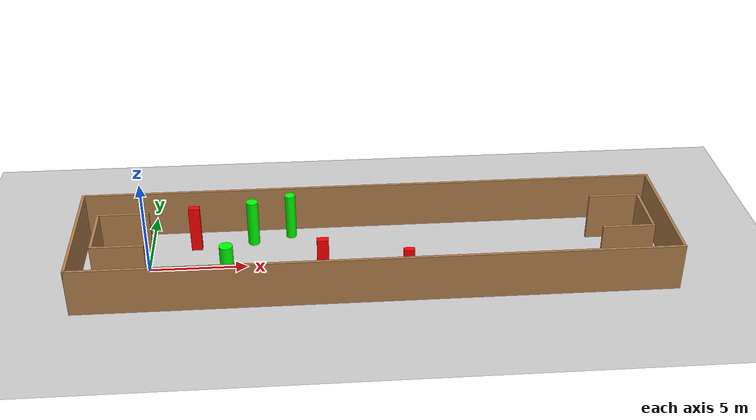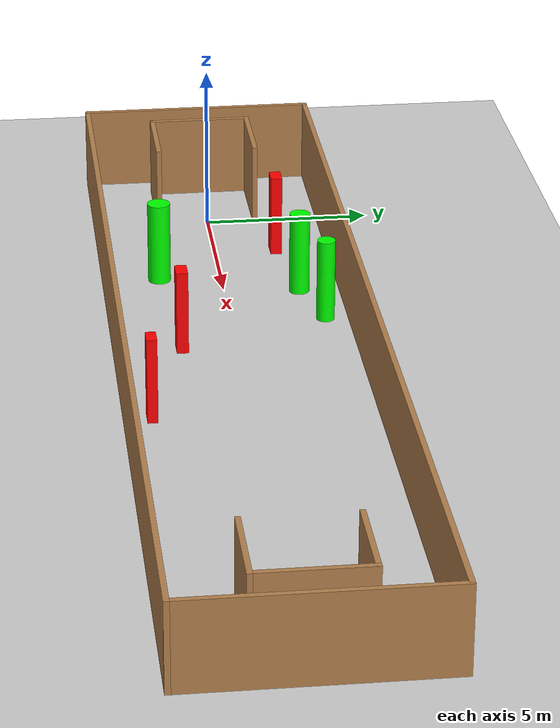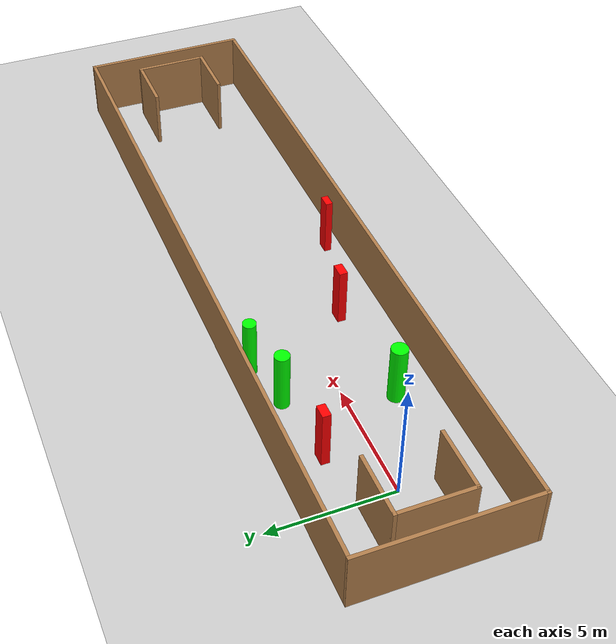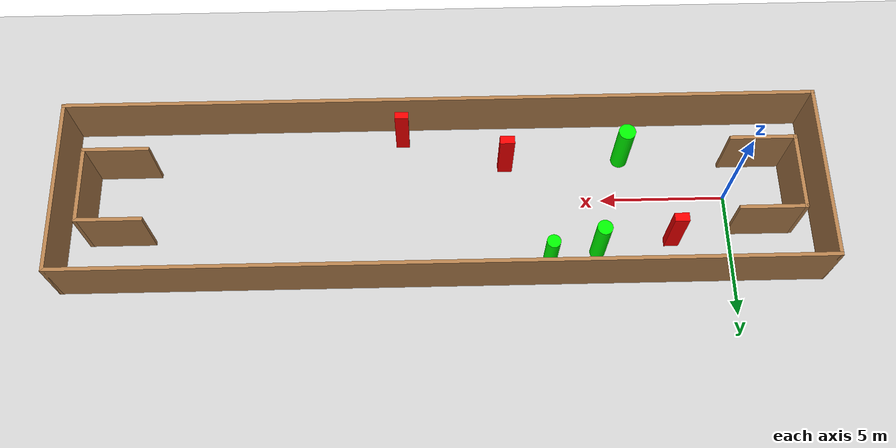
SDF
<sdf version="1.7">
 <world name="default">
  <light name="sun" type="directional">
   <pose>0 0 10 0 -0 0</pose>
   <diffuse>0.8 0.8 0.8 1</diffuse>
   <specular>0.2 0.2 0.2 1</specular>
   <attenuation>
    <range>1000</range>
    <constant>0.9</constant>
    <linear>0.01</linear>
    <quadratic>0.001</quadratic>
   </attenuation>
   <direction>-0.5 0.1 -0.9</direction>
   <spot><inner_angle>0</inner_angle><outer_angle>0</outer_angle><falloff>0</falloff></spot>
  </light>
  <model name="ground_plane">
   <static>1</static>
   <link name="link">
    <collision name="collision">
     <geometry><plane><normal>0 0 1</normal><size>100 100</size></plane></geometry>
     <surface>
      <contact><collide_bitmask>65535</collide_bitmask></contact>
      <friction><ode><mu>100</mu><mu2>50</mu2></ode></friction>
     </surface>
    </collision>
    <visual name="visual">
     <cast_shadows>0</cast_shadows>
     <geometry><plane><normal>0 0 1</normal><size>100 100</size></plane></geometry>
     <material>
      <script><uri>file://media/materials/scripts/gazebo.material</uri><name>Gazebo/Grey</name></script>
     </material>
    </visual>
   </link>
  </model>
  <gravity>0 0 -9.8</gravity>
  <magnetic_field>6e-06 2.3e-05 -4.2e-05</magnetic_field>
  <atmosphere type="adiabatic"/>
  <physics type="ode">
   <max_step_size>0.001</max_step_size>
   <real_time_factor>1</real_time_factor>
   <real_time_update_rate>1000</real_time_update_rate>
  </physics>
  <scene><ambient>0.4 0.4 0.4 1</ambient><background>0.7 0.7 0.7 1</background><shadows>1</shadows></scene>
  <spherical_coordinates>
   <surface_model>EARTH_WGS84</surface_model>
   <latitude_deg>0</latitude_deg>
   <longitude_deg>0</longitude_deg>
   <elevation>0</elevation>
   <heading_deg>0</heading_deg>
  </spherical_coordinates>
  <model name="my_base_walls">
   <link name="Wall_0">
    <collision name="Wall_0_Collision">
     <geometry><box><size>7.15 0.15 2.5</size></box></geometry>
     <pose>0 0 1.25 0 -0 0</pose>
    </collision>
    <visual name="Wall_0_Visual">
     <pose>0 0 1.25 0 -0 0</pose>
     <geometry><box><size>7.15 0.15 2.5</size></box></geometry>
     <material>
      <script><uri>file://media/materials/scripts/gazebo.material</uri><name>Gazebo/Wood</name></script>
      <ambient>1 1 1 1</ambient>
     </material>
     <meta><layer>0</layer></meta>
    </visual>
    <pose>-15 0 0 0 -0 1.5708</pose>
   </link>
   <link name="Wall_10">
    <collision name="Wall_10_Collision">
     <geometry><box><size>2.65 0.15 2.5</size></box></geometry>
     <pose>0 0 1.25 0 -0 0</pose>
    </collision>
    <visual name="Wall_10_Visual">
     <pose>0 0 1.25 0 -0 0</pose>
     <geometry><box><size>2.65 0.15 2.5</size></box></geometry>
     <material>
      <script><uri>file://media/materials/scripts/gazebo.material</uri><name>Gazebo/Wood</name></script>
      <ambient>1 1 1 1</ambient>
     </material>
     <meta><layer>0</layer></meta>
    </visual>
    <pose>-12.75 -1.5 0 0 -0 0</pose>
   </link>
   <link name="Wall_12">
    <collision name="Wall_12_Collision">
     <geometry><box><size>2.65 0.15 2.5</size></box></geometry>
     <pose>0 0 1.25 0 -0 0</pose>
    </collision>
    <visual name="Wall_12_Visual">
     <pose>0 0 1.25 0 -0 0</pose>
     <geometry><box><size>2.65 0.15 2.5</size></box></geometry>
     <material>
      <script><uri>file://media/materials/scripts/gazebo.material</uri><name>Gazebo/Wood</name></script>
      <ambient>1 1 1 1</ambient>
     </material>
     <meta><layer>0</layer></meta>
    </visual>
    <pose>-12.75 1.5 0 0 -0 0</pose>
   </link>
   <link name="Wall_14">
    <collision name="Wall_14_Collision">
     <geometry><box><size>3.15 0.15 2.5</size></box></geometry>
     <pose>0 0 1.25 0 -0 0</pose>
    </collision>
    <visual name="Wall_14_Visual">
     <pose>0 0 1.25 0 -0 0</pose>
     <geometry><box><size>3.15 0.15 2.5</size></box></geometry>
     <material>
      <script><uri>file://media/materials/scripts/gazebo.material</uri><name>Gazebo/Wood</name></script>
      <ambient>1 1 1 1</ambient>
     </material>
     <meta><layer>0</layer></meta>
    </visual>
    <pose>14 0 0 0 -0 -1.5708</pose>
   </link>
   <link name="Wall_15">
    <collision name="Wall_15_Collision">
     <geometry><box><size>2.65 0.15 2.5</size></box></geometry>
     <pose>0 0 1.25 0 -0 0</pose>
    </collision>
    <visual name="Wall_15_Visual">
     <pose>0 0 1.25 0 -0 0</pose>
     <geometry><box><size>2.65 0.15 2.5</size></box></geometry>
     <material>
      <script><uri>file://media/materials/scripts/gazebo.material</uri><name>Gazebo/Wood</name></script>
      <ambient>1 1 1 1</ambient>
     </material>
     <meta><layer>0</layer></meta>
    </visual>
    <pose>12.75 -1.5 0 0 -0 3.14159</pose>
   </link>
   <link name="Wall_17">
    <collision name="Wall_17_Collision">
     <geometry><box><size>2.65 0.15 2.5</size></box></geometry>
     <pose>0 0 1.25 0 -0 0</pose>
    </collision>
    <visual name="Wall_17_Visual">
     <pose>0 0 1.25 0 -0 0</pose>
     <geometry><box><size>2.65 0.15 2.5</size></box></geometry>
     <material>
      <script><uri>file://media/materials/scripts/gazebo.material</uri><name>Gazebo/Wood</name></script>
      <ambient>1 1 1 1</ambient>
     </material>
     <meta><layer>0</layer></meta>
    </visual>
    <pose>12.75 1.5 0 0 -0 3.14159</pose>
   </link>
   <link name="Wall_2">
    <collision name="Wall_2_Collision">
     <geometry><box><size>30.15 0.15 2.5</size></box></geometry>
     <pose>0 0 1.25 0 -0 0</pose>
    </collision>
    <visual name="Wall_2_Visual">
     <pose>0 0 1.25 0 -0 0</pose>
     <geometry><box><size>30.15 0.15 2.5</size></box></geometry>
     <material>
      <script><uri>file://media/materials/scripts/gazebo.material</uri><name>Gazebo/Wood</name></script>
      <ambient>1 1 1 1</ambient>
     </material>
     <meta><layer>0</layer></meta>
    </visual>
    <pose>-0 -3.5 0 0 -0 0</pose>
   </link>
   <link name="Wall_4">
    <collision name="Wall_4_Collision">
     <geometry><box><size>30.15 0.15 2.5</size></box></geometry>
     <pose>0 0 1.25 0 -0 0</pose>
    </collision>
    <visual name="Wall_4_Visual">
     <pose>0 0 1.25 0 -0 0</pose>
     <geometry><box><size>30.15 0.15 2.5</size></box></geometry>
     <material>
      <script><uri>file://media/materials/scripts/gazebo.material</uri><name>Gazebo/Wood</name></script>
      <ambient>1 1 1 1</ambient>
     </material>
     <meta><layer>0</layer></meta>
    </visual>
    <pose>-0 3.5 0 0 -0 0</pose>
   </link>
   <link name="Wall_6">
    <collision name="Wall_6_Collision">
     <geometry><box><size>7.15 0.15 2.5</size></box></geometry>
     <pose>0 0 1.25 0 -0 0</pose>
    </collision>
    <visual name="Wall_6_Visual">
     <pose>0 0 1.25 0 -0 0</pose>
     <geometry><box><size>7.15 0.15 2.5</size></box></geometry>
     <material>
      <script><uri>file://media/materials/scripts/gazebo.material</uri><name>Gazebo/Wood</name></script>
      <ambient>1 1 1 1</ambient>
     </material>
     <meta><layer>0</layer></meta>
    </visual>
    <pose>15 0 0 0 -0 -1.5708</pose>
   </link>
   <link name="Wall_9">
    <collision name="Wall_9_Collision">
     <geometry><box><size>3.15 0.15 2.5</size></box></geometry>
     <pose>0 0 1.25 0 -0 0</pose>
    </collision>
    <visual name="Wall_9_Visual">
     <pose>0 0 1.25 0 -0 0</pose>
     <geometry><box><size>3.15 0.15 2.5</size></box></geometry>
     <material>
      <script><uri>file://media/materials/scripts/gazebo.material</uri><name>Gazebo/Wood</name></script>
      <ambient>1 1 1 1</ambient>
     </material>
     <meta><layer>0</layer></meta>
    </visual>
    <pose>-14 0 0 0 -0 -1.5708</pose>
   </link>
   <static>1</static>
   <pose>11.5 0 0 0 -0 0</pose>
  </model>
  <model name="cylinder1">
   <static>1</static>
   <link name="link">
    <inertial>
     <mass>1</mass>
     <inertia><ixx>0.5</ixx><ixy>0</ixy><ixz>0</ixz><iyy>0.5</iyy><iyz>0</iyz><izz>1</izz></inertia>
    </inertial>
    <collision name="collision">
     <geometry><cylinder><radius>0.2692464583127341</radius><length>2.5</length></cylinder></geometry>
    </collision>
    <visual name="visual">
     <geometry><cylinder><radius>0.2692464583127341</radius><length>2.5</length></cylinder></geometry>
     <material>
      <ambient>0 1 0 1</ambient>
      <diffuse>0 1 0 1</diffuse>
      <specular>0.1 0.1 0.1 1</specular>
      <emissive>0 0 0 0</emissive>
     </material>
    </visual>
   </link>
   <pose>7.283478807404931 2.761571918860212 1.25 0 0 0</pose>
  </model>
  <model name="cylinder2">
   <static>1</static>
   <link name="link">
    <inertial>
     <mass>1</mass>
     <inertia><ixx>0.5</ixx><ixy>0</ixy><ixz>0</ixz><iyy>0.5</iyy><iyz>0</iyz><izz>1</izz></inertia>
    </inertial>
    <collision name="collision">
     <geometry><cylinder><radius>0.3381209589587358</radius><length>2.5</length></cylinder></geometry>
    </collision>
    <visual name="visual">
     <geometry><cylinder><radius>0.3381209589587358</radius><length>2.5</length></cylinder></geometry>
     <material>
      <ambient>0 1 0 1</ambient>
      <diffuse>0 1 0 1</diffuse>
      <specular>0.1 0.1 0.1 1</specular>
      <emissive>0 0 0 0</emissive>
     </material>
    </visual>
   </link>
   <pose>4.091527689517097 -1.8419922089235539 1.25 0 0 0</pose>
  </model>
  <model name="cylinder3">
   <static>1</static>
   <link name="link">
    <inertial>
     <mass>1</mass>
     <inertia><ixx>0.5</ixx><ixy>0</ixy><ixz>0</ixz><iyy>0.5</iyy><iyz>0</iyz><izz>1</izz></inertia>
    </inertial>
    <collision name="collision">
     <geometry><cylinder><radius>0.30295098694240735</radius><length>2.5</length></cylinder></geometry>
    </collision>
    <visual name="visual">
     <geometry><cylinder><radius>0.30295098694240735</radius><length>2.5</length></cylinder></geometry>
     <material>
      <ambient>0 1 0 1</ambient>
      <diffuse>0 1 0 1</diffuse>
      <specular>0.1 0.1 0.1 1</specular>
      <emissive>0 0 0 0</emissive>
     </material>
    </visual>
   </link>
   <pose>5.304554995834081 2.239826948264448 1.25 0 0 0</pose>
  </model>
  <model name="box1">
   <static>1</static>
   <link name="link">
    <inertial>
     <mass>1</mass>
     <inertia><ixx>0.083</ixx><ixy>0</ixy><ixz>0</ixz><iyy>0.083</iyy><iyz>0</iyz><izz>0.083</izz></inertia>
    </inertial>
    <collision name="collision">
     <geometry><box><size>0.584780245131769 0.3411030726542416 2.5</size></box></geometry>
    </collision>
    <visual name="visual">
     <geometry><box><size>0.584780245131769 0.3411030726542416 2.5</size></box></geometry>
     <material>
      <ambient>1 0 0 1</ambient>
      <diffuse>1 0 0 1</diffuse>
      <specular>0.1 0.1 0.1 1</specular>
      <emissive>0 0 0 0</emissive>
     </material>
    </visual>
    <sensor name="my_contact" type="contact">
     <contact><collision>box_collision</collision><topic>__default_topic__</topic></contact>
    </sensor>
   </link>
   <pose>8.843675139374877 -1.586587833865528 1.25 0 0 0</pose>
  </model>
  <model name="box2">
   <static>1</static>
   <link name="link">
    <inertial>
     <mass>1</mass>
     <inertia><ixx>0.083</ixx><ixy>0</ixy><ixz>0</ixz><iyy>0.083</iyy><iyz>0</iyz><izz>0.083</izz></inertia>
    </inertial>
    <collision name="collision">
     <geometry><box><size>0.5391005936003755 0.2930346930931138 2.5</size></box></geometry>
    </collision>
    <visual name="visual">
     <geometry><box><size>0.5391005936003755 0.2930346930931138 2.5</size></box></geometry>
     <material>
      <ambient>1 0 0 1</ambient>
      <diffuse>1 0 0 1</diffuse>
      <specular>0.1 0.1 0.1 1</specular>
      <emissive>0 0 0 0</emissive>
     </material>
    </visual>
    <sensor name="my_contact" type="contact">
     <contact><collision>box_collision</collision><topic>__default_topic__</topic></contact>
    </sensor>
   </link>
   <pose>13.01914934598566 -2.772137590071424 1.25 0 0 0</pose>
  </model>
  <model name="box3">
   <static>1</static>
   <link name="link">
    <inertial>
     <mass>1</mass>
     <inertia><ixx>0.083</ixx><ixy>0</ixy><ixz>0</ixz><iyy>0.083</iyy><iyz>0</iyz><izz>0.083</izz></inertia>
    </inertial>
    <collision name="collision">
     <geometry><box><size>0.5714863713556257 0.33883811294065447 2.5</size></box></geometry>
    </collision>
    <visual name="visual">
     <geometry><box><size>0.5714863713556257 0.33883811294065447 2.5</size></box></geometry>
     <material>
      <ambient>1 0 0 1</ambient>
      <diffuse>1 0 0 1</diffuse>
      <specular>0.1 0.1 0.1 1</specular>
      <emissive>0 0 0 0</emissive>
     </material>
    </visual>
    <sensor name="my_contact" type="contact">
     <contact><collision>box_collision</collision><topic>__default_topic__</topic></contact>
    </sensor>
   </link>
   <pose>2.3317884941820335 1.8727308498474233 1.25 0 0 0</pose>
  </model>
 </world>
</sdf>
